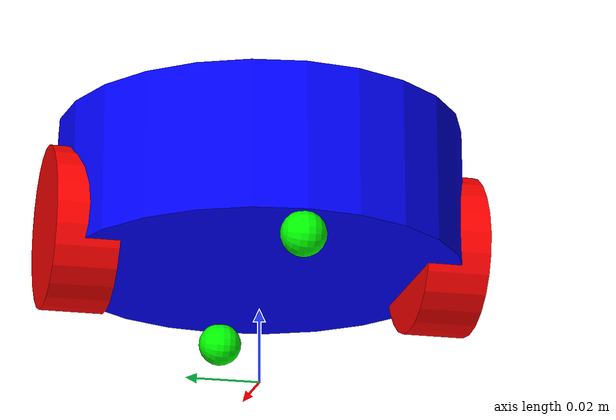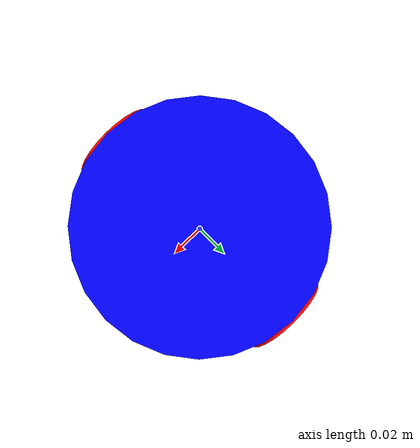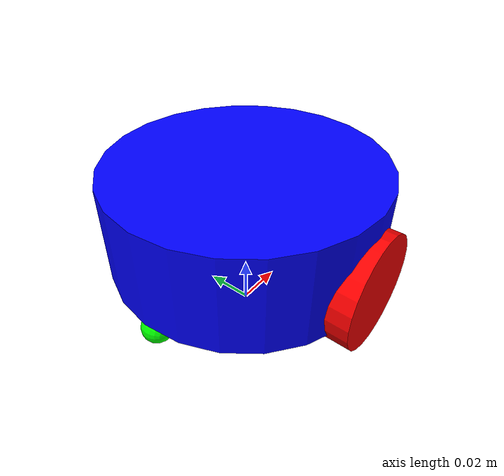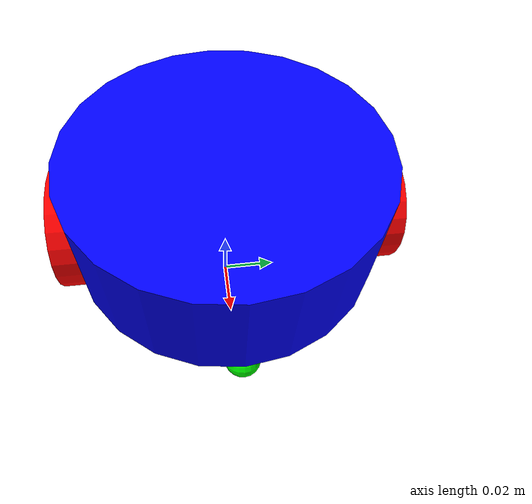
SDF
<?xml version="1.0" ?>
<sdf version="1.8">

    <model name='alphabot2' canonical_link='telo'>
        <!-- https://gazebosim.org/api/sim/9/auto_inertia_calculation.html -->

        <!-- celkova hmotnost: 310g = 0.31kg -->
        <!-- hmotnost kolesa: 20g -->
        <!-- hmotnost bez kolies: 270g = 0.27kg -->
        <!-- objem tela: pi * 0.055^2 * 0.04 = 0.000380132711084365 -->
        <!-- hustota: 0.27 / 0.00038... = 710.278 -->
        <link name='telo'>
            <pose relative_to='__model__'>0 0 0.05 0 0 0</pose>
            <inertial auto="true" />
            <collision name='collision'>
                <density>710.278</density>
                <geometry>
                    <cylinder>
                        <radius>0.055</radius>
                        <length>0.04</length>
                    </cylinder>
                </geometry>
            </collision>
            <visual name='visual'>
                <geometry>
                    <cylinder>
                        <radius>0.055</radius>
                        <length>0.04</length>
                    </cylinder>
                </geometry>
                <material>
                    <ambient>0.0 0.0 1.0 1</ambient>
                    <diffuse>0.0 0.0 1.0 1</diffuse>
                    <specular>0.0 0.0 1.0 1</specular>
                </material>
            </visual>
        </link>

        <!-- hmotnost kolesa: 20g -->
        <!-- objem kolesa: pi * 0.022^2 * 0.017 = 0.00002584 -->
        <!-- hustota: 0.020 / 0.0000258... = 773.72359 -->
        <link name='lave_koleso'>
            <pose relative_to="telo">0 0.050 -0.011 -1.5707 0 0</pose>
            <inertial auto="true" />
            <collision name='collision'>
                <density>773.72359</density>
                <geometry>
                    <cylinder>
                        <radius>0.022</radius>
                        <length>0.017</length>
                    </cylinder>
                </geometry>
            </collision>
            <visual name='visual'>
                <geometry>
                    <cylinder>
                        <radius>0.022</radius>
                        <length>0.017</length>
                    </cylinder>
                </geometry>
                <material>
                    <ambient>1.0 0.0 0.0 1</ambient>
                    <diffuse>1.0 0.0 0.0 1</diffuse>
                    <specular>1.0 0.0 0.0 1</specular>
                </material>
            </visual>
        </link>
        <joint name='lave_koleso_zaves' type='revolute'>
            <pose relative_to='lave_koleso'/>
            <parent>telo</parent>
            <child>lave_koleso</child>
            <axis>
                <xyz expressed_in='__model__'>0 1 0</xyz> <!--can be descired to any frame or even arbitrary frames-->
                <limit>
                    <lower>-1.79769e+308</lower>    <!--negative infinity-->
                    <upper>1.79769e+308</upper>     <!--positive infinity-->
                </limit>
            </axis>
        </joint>

        <link name='prave_koleso'>
            <pose relative_to="telo">0 -0.050 -0.011 -1.5707 0 0</pose>
            <inertial auto="true" />
            <collision name='collision'>
                <density>773.72359</density>
                <geometry>
                    <cylinder>
                        <radius>0.022</radius>
                        <length>0.017</length>
                    </cylinder>
                </geometry>
            </collision>
            <visual name='visual'>
                <geometry>
                    <cylinder>
                        <radius>0.022</radius>
                        <length>0.017</length>
                    </cylinder>
                </geometry>
                <material>
                    <ambient>1.0 0.0 0.0 1</ambient>
                    <diffuse>1.0 0.0 0.0 1</diffuse>
                    <specular>1.0 0.0 0.0 1</specular>
                </material>
            </visual>
        </link>
        <joint name='prave_koleso_zaves' type='revolute'>
            <pose relative_to='prave_koleso'/>
            <parent>telo</parent>
            <child>prave_koleso</child>
            <axis>
                <xyz expressed_in='__model__'>0 -1 0</xyz>
                <limit>
                    <lower>-1.79769e+308</lower>    <!--negative infinity-->
                    <upper>1.79769e+308</upper>     <!--positive infinity-->
                </limit>
            </axis>
        </joint>

        <!-- radius: 1.2 cm -->
        <link name='caster1'>
            <pose relative_to="telo">-0.050 0 -0.025 -1.5707 0 0</pose>
            <inertial auto="true" />
            <collision name='collision'>
                <density>1000</density>
                <geometry>
                    <sphere>
                        <radius>0.006</radius>
                    </sphere>
                </geometry>
            </collision>
            <visual name='visual'>
                <geometry>
                    <sphere>
                        <radius>0.006</radius>
                    </sphere>
                </geometry>
                <material>
                    <ambient>0.0 1 0.0 1</ambient>
                    <diffuse>0.0 1 0.0 1</diffuse>
                    <specular>0.0 1 0.0 1</specular>
                </material>
            </visual>
        </link>
        <joint name='caster1_zaves' type='fixed'>
            <parent>telo</parent>
            <child>caster1</child>
        </joint>

        <link name='caster2'>
            <pose relative_to="telo">0.050 0 -0.025 -1.5707 0 0</pose>
            <inertial auto="true" />
            <collision name='collision'>
                <density>1000</density>
                <geometry>
                    <sphere>
                        <radius>0.006</radius>
                    </sphere>
                </geometry>
            </collision>
            <visual name='visual'>
                <geometry>
                    <sphere>
                        <radius>0.006</radius>
                    </sphere>
                </geometry>
                <material>
                    <ambient>0.0 1 0.0 1</ambient>
                    <diffuse>0.0 1 0.0 1</diffuse>
                    <specular>0.0 1 0.0 1</specular>
                </material>
            </visual>
        </link>
        <joint name='caster2_zaves' type='fixed'>
            <parent>telo</parent>
            <child>caster2</child>
        </joint>

        <ros2_control name="RealRobot" type="system">
            <hardware>
                <plugin>alphabot2_diffdrive/DiffDriveAlphabot2</plugin>
                <param name="lave_koleso_nazov">lave_koleso_zaves</param>
                <param name="prave_koleso_nazov">prave_koleso_zaves</param>
                <param name="max_rychlost_kolesa">40.0</param>
            </hardware>

            <joint name="lave_koleso_zaves">
                <command_interface name="velocity">
                    <param name="min">-40</param>
                    <param name="max">40</param>
                </command_interface>
                <state_interface name="position"/>
                <state_interface name="velocity"/>
            </joint>
            <joint name="prave_koleso_zaves">
                <command_interface name="velocity">
                    <param name="min">-40</param>
                    <param name="max">40</param>
                </command_interface>
                <state_interface name="position"/>
                <state_interface name="velocity"/>
            </joint>
        </ros2_control>

    </model>

</sdf>
